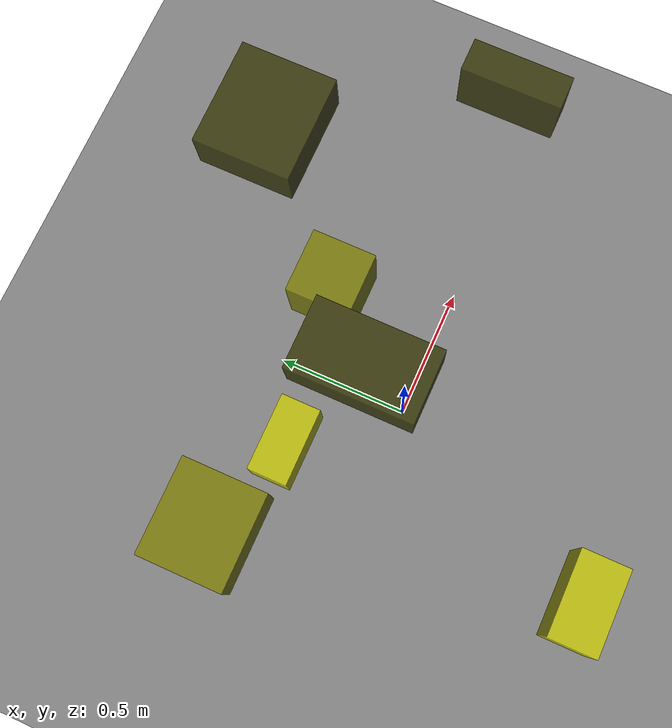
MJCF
<?xml version="1.0"?>
<mujoco model="obstacle_scene">
  <compiler angle="radian" coordinate="local"/>
  <option timestep="0.001" gravity="0 0 -9.81"/>

  <asset>
    <material name="obstacle_mat" rgba="0.8 0.8 0.0 0.8"/>
    <material name="ground_mat" rgba="0.5 0.5 0.5 1"/>
  </asset>

  <worldbody>
    <!-- Ground plane -->
    <geom name="ground" type="plane" size="3 3 0.1" material="ground_mat"/>

    <!-- Obstacles -->
    <body name="obstacle_0" pos="-0.119874 0.079207 1.182156">
      <geom name="obs_0" type="box" size="0.109191 0.188994 0.071193" rgba="0.2 0.2 0.0 0.8"/>
    </body>
    <body name="obstacle_1" pos="0.288173 0.409601 0.278869">
      <geom name="obs_1" type="box" size="0.120891 0.121362 0.131792" rgba="0.5 0.5 0.0 0.8"/>
    </body>
    <body name="obstacle_2" pos="-0.295261 0.343420 0.101481">
      <geom name="obs_2" type="box" size="0.150035 0.077401 0.082893" rgba="0.8 0.8 0.0 0.8"/>
    </body>
    <body name="obstacle_3" pos="0.560617 0.734838 0.818776">
      <geom name="obs_3" type="box" size="0.184116 0.165459 0.080149" rgba="0.2 0.2 0.0 0.8"/>
    </body>
    <body name="obstacle_4" pos="-0.687281 0.439065 0.321339">
      <geom name="obs_4" type="box" size="0.181149 0.160754 0.097113" rgba="0.5 0.5 0.0 0.8"/>
    </body>
    <body name="obstacle_5" pos="-0.400336 -0.850438 0.248111">
      <geom name="obs_5" type="box" size="0.160489 0.090397 0.125508" rgba="0.8 0.8 0.0 0.8"/>
    </body>
    <body name="obstacle_6" pos="0.887540 0.035064 0.998785">
      <geom name="obs_6" type="box" size="0.053296 0.159379 0.101418" rgba="0.2 0.2 0.0 0.8"/>
    </body>
  </worldbody>
</mujoco>
